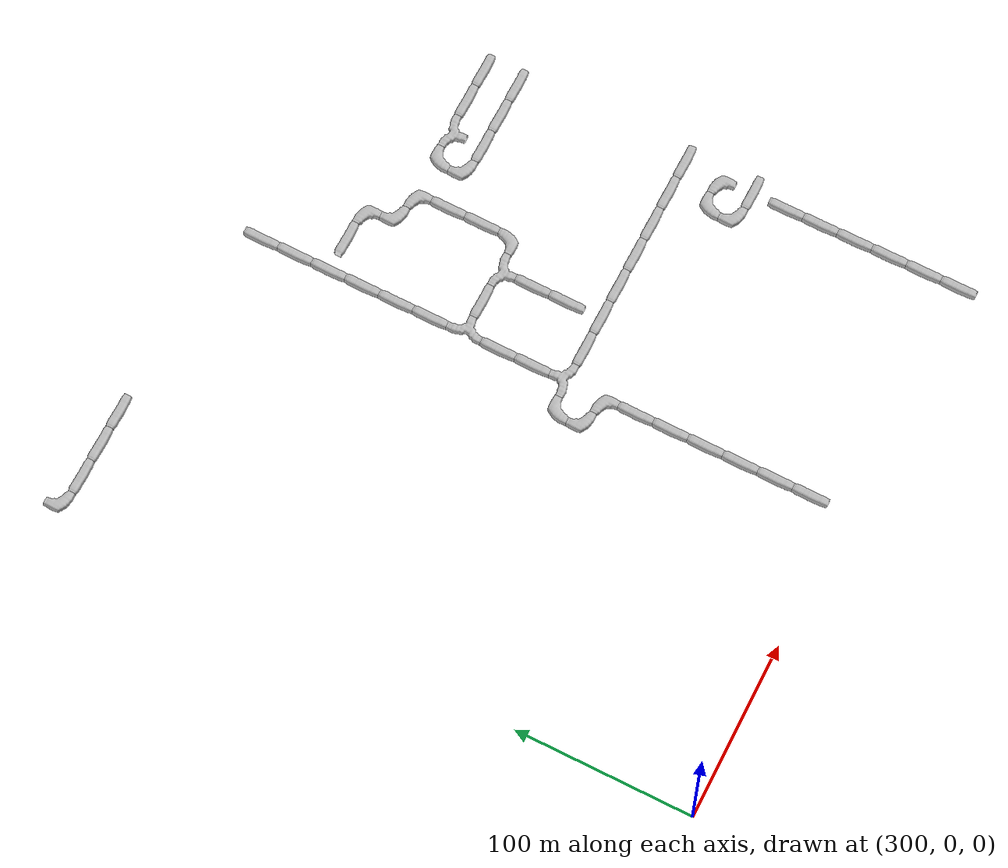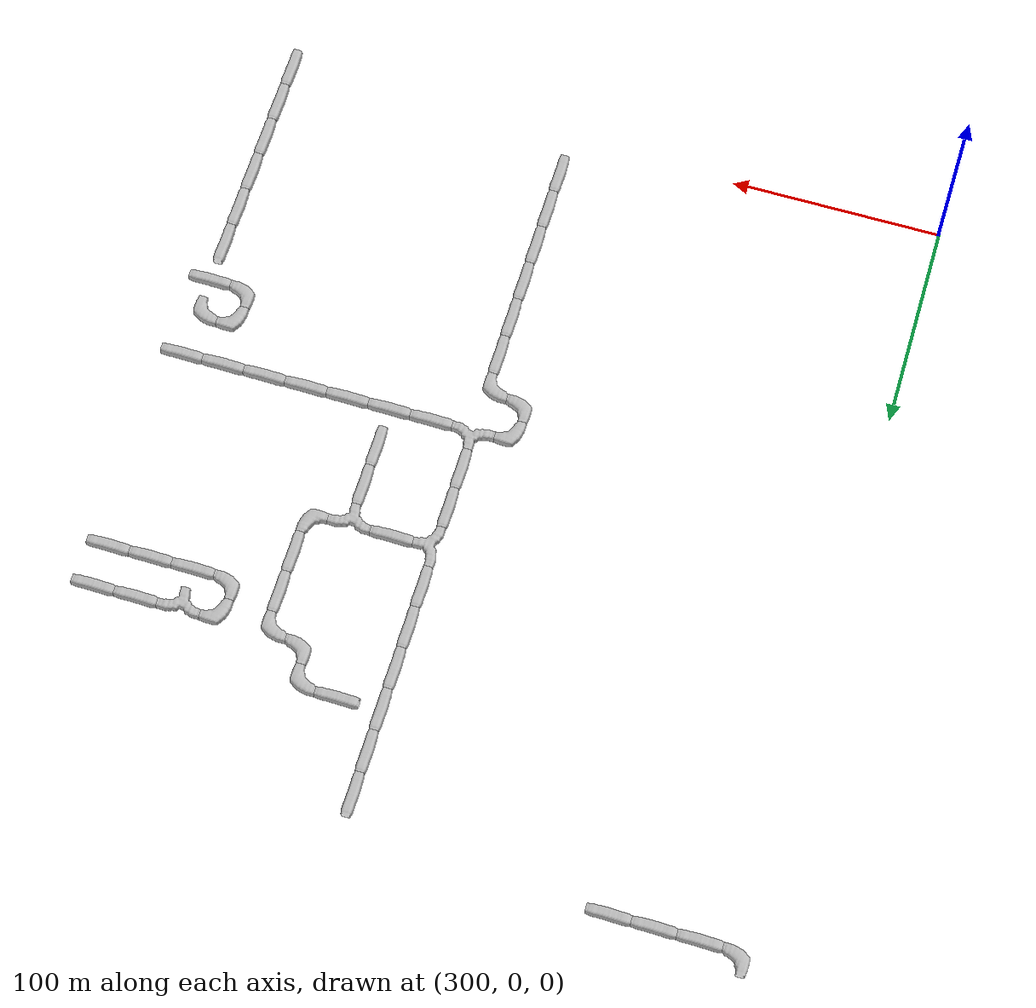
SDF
<sdf version="1.6">
 <world name="cave_32000_32">
  <include>
   <static>true</static>
   <name>cave_31_13</name>
   <pose>620 260 0 0 0 1.5707963267948966</pose>
   <uri>model://cave_straight_20m</uri>
  </include>
  <include>
   <static>true</static>
   <name>cave_30_13</name>
   <pose>600 260 0 0 0 1.5707963267948966</pose>
   <uri>model://cave_straight_20m</uri>
  </include>
  <include>
   <static>true</static>
   <name>cave_29_13</name>
   <pose>580 260 0 0 0 1.5707963267948966</pose>
   <uri>model://cave_straight_20m</uri>
  </include>
  <include>
   <static>true</static>
   <name>cave_28_13</name>
   <pose>560 260 0 0 0 0.0</pose>
   <uri>model://cave_L_20m</uri>
  </include>
  <include>
   <static>true</static>
   <name>cave_28_14</name>
   <pose>560 280 0 0 0 -1.5707963267948966</pose>
   <uri>model://cave_L_20m</uri>
  </include>
  <include>
   <static>true</static>
   <name>cave_29_14</name>
   <pose>580 280 0 0 0 3.141592653589793</pose>
   <uri>model://cave_3way_20m</uri>
  </include>
  <include>
   <static>true</static>
   <name>cave_30_14</name>
   <pose>600 280 0 0 0 1.5707963267948966</pose>
   <uri>model://cave_straight_20m</uri>
  </include>
  <include>
   <static>true</static>
   <name>cave_31_14</name>
   <pose>620 280 0 0 0 1.5707963267948966</pose>
   <uri>model://cave_straight_20m</uri>
  </include>
  <include>
   <static>true</static>
   <name>cave_31_6</name>
   <pose>620 120 0 0 0 1.5707963267948966</pose>
   <uri>model://cave_straight_20m</uri>
  </include>
  <include>
   <static>true</static>
   <name>cave_30_6</name>
   <pose>600 120 0 0 0 0.0</pose>
   <uri>model://cave_L_20m</uri>
  </include>
  <include>
   <static>true</static>
   <name>cave_30_7</name>
   <pose>600 140 0 0 0 -1.5707963267948966</pose>
   <uri>model://cave_L_20m</uri>
  </include>
  <include>
   <static>true</static>
   <name>cave_31_7</name>
   <pose>620 140 0 0 0 3.141592653589793</pose>
   <uri>model://cave_L_20m</uri>
  </include>
  <include>
   <static>true</static>
   <name>cave_31_8</name>
   <pose>620 160 0 0 0 1.5707963267948966</pose>
   <uri>model://cave_straight_20m</uri>
  </include>
  <include>
   <static>true</static>
   <name>cave_30_8</name>
   <pose>600 160 0 0 0 1.5707963267948966</pose>
   <uri>model://cave_straight_20m</uri>
  </include>
  <include>
   <static>true</static>
   <name>cave_29_8</name>
   <pose>580 160 0 0 0 1.5707963267948966</pose>
   <uri>model://cave_straight_20m</uri>
  </include>
  <include>
   <static>true</static>
   <name>cave_28_8</name>
   <pose>560 160 0 0 0 1.5707963267948966</pose>
   <uri>model://cave_straight_20m</uri>
  </include>
  <include>
   <static>true</static>
   <name>cave_27_8</name>
   <pose>540 160 0 0 0 1.5707963267948966</pose>
   <uri>model://cave_straight_20m</uri>
  </include>
  <include>
   <static>true</static>
   <name>cave_26_8</name>
   <pose>520 160 0 0 0 1.5707963267948966</pose>
   <uri>model://cave_straight_20m</uri>
  </include>
  <include>
   <static>true</static>
   <name>cave_25_8</name>
   <pose>500 160 0 0 0 1.5707963267948966</pose>
   <uri>model://cave_straight_20m</uri>
  </include>
  <include>
   <static>true</static>
   <name>cave_24_8</name>
   <pose>480 160 0 0 0 0.0</pose>
   <uri>model://cave_3way_20m</uri>
  </include>
  <include>
   <static>true</static>
   <name>cave_23_8</name>
   <pose>460 160 0 0 0 -1.5707963267948966</pose>
   <uri>model://cave_L_20m</uri>
  </include>
  <include>
   <static>true</static>
   <name>cave_23_7</name>
   <pose>460 140 0 0 0 0.0</pose>
   <uri>model://cave_L_20m</uri>
  </include>
  <include>
   <static>true</static>
   <name>cave_24_7</name>
   <pose>480 140 0 0 0 3.141592653589793</pose>
   <uri>model://cave_L_20m</uri>
  </include>
  <include>
   <static>true</static>
   <name>cave_24_6</name>
   <pose>480 120 0 0 0 0.0</pose>
   <uri>model://cave_straight_20m</uri>
  </include>
  <include>
   <static>true</static>
   <name>cave_24_5</name>
   <pose>480 100 0 0 0 0.0</pose>
   <uri>model://cave_straight_20m</uri>
  </include>
  <include>
   <static>true</static>
   <name>cave_24_4</name>
   <pose>480 80 0 0 0 0.0</pose>
   <uri>model://cave_straight_20m</uri>
  </include>
  <include>
   <static>true</static>
   <name>cave_24_3</name>
   <pose>480 60 0 0 0 0.0</pose>
   <uri>model://cave_straight_20m</uri>
  </include>
  <include>
   <static>true</static>
   <name>cave_24_2</name>
   <pose>480 40 0 0 0 0.0</pose>
   <uri>model://cave_straight_20m</uri>
  </include>
  <include>
   <static>true</static>
   <name>cave_24_1</name>
   <pose>480 20 0 0 0 0.0</pose>
   <uri>model://cave_straight_20m</uri>
  </include>
  <include>
   <static>true</static>
   <name>cave_31_0</name>
   <pose>620 0 0 0 0 0.0</pose>
   <uri>model://cave_straight_20m</uri>
  </include>
  <include>
   <static>true</static>
   <name>cave_31_1</name>
   <pose>620 20 0 0 0 0.0</pose>
   <uri>model://cave_straight_20m</uri>
  </include>
  <include>
   <static>true</static>
   <name>cave_31_2</name>
   <pose>620 40 0 0 0 0.0</pose>
   <uri>model://cave_straight_20m</uri>
  </include>
  <include>
   <static>true</static>
   <name>cave_31_3</name>
   <pose>620 60 0 0 0 0.0</pose>
   <uri>model://cave_straight_20m</uri>
  </include>
  <include>
   <static>true</static>
   <name>cave_31_4</name>
   <pose>620 80 0 0 0 0.0</pose>
   <uri>model://cave_straight_20m</uri>
  </include>
  <include>
   <static>true</static>
   <name>cave_31_5</name>
   <pose>620 100 0 0 0 0.0</pose>
   <uri>model://cave_straight_20m</uri>
  </include>
  <include>
   <static>true</static>
   <name>cave_24_9</name>
   <pose>480 180 0 0 0 0.0</pose>
   <uri>model://cave_straight_20m</uri>
  </include>
  <include>
   <static>true</static>
   <name>cave_24_10</name>
   <pose>480 200 0 0 0 0.0</pose>
   <uri>model://cave_straight_20m</uri>
  </include>
  <include>
   <static>true</static>
   <name>cave_24_11</name>
   <pose>480 220 0 0 0 -1.5707963267948966</pose>
   <uri>model://cave_3way_20m</uri>
  </include>
  <include>
   <static>true</static>
   <name>cave_25_11</name>
   <pose>500 220 0 0 0 1.5707963267948966</pose>
   <uri>model://cave_straight_20m</uri>
  </include>
  <include>
   <static>true</static>
   <name>cave_26_11</name>
   <pose>520 220 0 0 0 3.141592653589793</pose>
   <uri>model://cave_3way_20m</uri>
  </include>
  <include>
   <static>true</static>
   <name>cave_27_11</name>
   <pose>540 220 0 0 0 1.5707963267948966</pose>
   <uri>model://cave_L_20m</uri>
  </include>
  <include>
   <static>true</static>
   <name>cave_27_12</name>
   <pose>540 240 0 0 0 0.0</pose>
   <uri>model://cave_straight_20m</uri>
  </include>
  <include>
   <static>true</static>
   <name>cave_27_13</name>
   <pose>540 260 0 0 0 0.0</pose>
   <uri>model://cave_straight_20m</uri>
  </include>
  <include>
   <static>true</static>
   <name>cave_27_14</name>
   <pose>540 280 0 0 0 3.141592653589793</pose>
   <uri>model://cave_L_20m</uri>
  </include>
  <include>
   <static>true</static>
   <name>cave_26_14</name>
   <pose>520 280 0 0 0 0.0</pose>
   <uri>model://cave_L_20m</uri>
  </include>
  <include>
   <static>true</static>
   <name>cave_26_15</name>
   <pose>520 300 0 0 0 3.141592653589793</pose>
   <uri>model://cave_L_20m</uri>
  </include>
  <include>
   <static>true</static>
   <name>cave_25_15</name>
   <pose>500 300 0 0 0 1.5707963267948966</pose>
   <uri>model://cave_straight_20m</uri>
  </include>
  <include>
   <static>true</static>
   <name>cave_26_10</name>
   <pose>520 200 0 0 0 0.0</pose>
   <uri>model://cave_straight_20m</uri>
  </include>
  <include>
   <static>true</static>
   <name>cave_26_9</name>
   <pose>520 180 0 0 0 0.0</pose>
   <uri>model://cave_straight_20m</uri>
  </include>
  <include>
   <static>true</static>
   <name>cave_24_12</name>
   <pose>480 240 0 0 0 0.0</pose>
   <uri>model://cave_straight_20m</uri>
  </include>
  <include>
   <static>true</static>
   <name>cave_24_13</name>
   <pose>480 260 0 0 0 0.0</pose>
   <uri>model://cave_straight_20m</uri>
  </include>
  <include>
   <static>true</static>
   <name>cave_24_14</name>
   <pose>480 280 0 0 0 0.0</pose>
   <uri>model://cave_straight_20m</uri>
  </include>
  <include>
   <static>true</static>
   <name>cave_24_15</name>
   <pose>480 300 0 0 0 0.0</pose>
   <uri>model://cave_straight_20m</uri>
  </include>
  <include>
   <static>true</static>
   <name>cave_24_16</name>
   <pose>480 320 0 0 0 0.0</pose>
   <uri>model://cave_straight_20m</uri>
  </include>
  <include>
   <static>true</static>
   <name>cave_24_17</name>
   <pose>480 340 0 0 0 0.0</pose>
   <uri>model://cave_straight_20m</uri>
  </include>
  <include>
   <static>true</static>
   <name>cave_18_18</name>
   <pose>360 360 0 0 0 1.5707963267948966</pose>
   <uri>model://cave_straight_20m</uri>
  </include>
  <include>
   <static>true</static>
   <name>cave_17_18</name>
   <pose>340 360 0 0 0 1.5707963267948966</pose>
   <uri>model://cave_straight_20m</uri>
  </include>
  <include>
   <static>true</static>
   <name>cave_16_18</name>
   <pose>320 360 0 0 0 1.5707963267948966</pose>
   <uri>model://cave_straight_20m</uri>
  </include>
  <include>
   <static>true</static>
   <name>cave_15_18</name>
   <pose>300 360 0 0 0 0.0</pose>
   <uri>model://cave_L_20m</uri>
  </include>
 </world>
</sdf>
